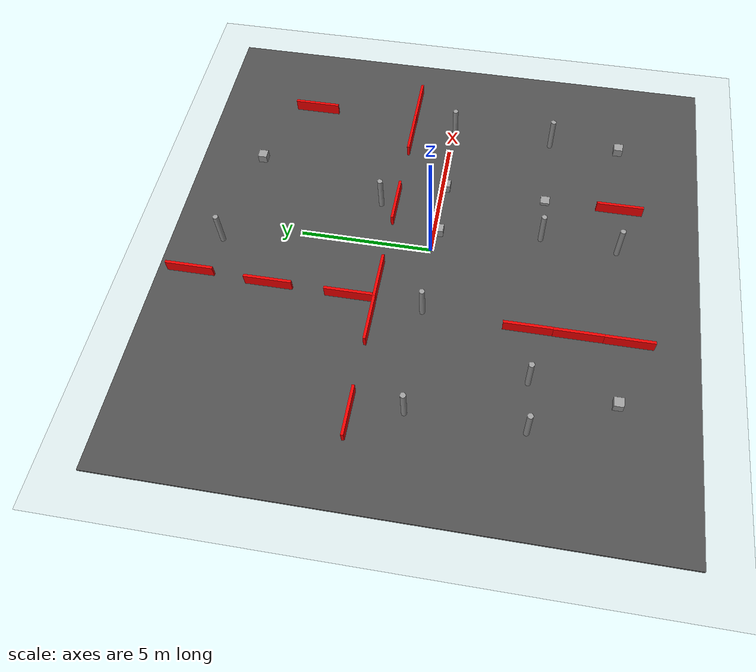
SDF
<sdf version="1.7">
 <world name="default">
  <light name="sun" type="directional">
   <pose>0 0 10 0 -0 0</pose>
   <diffuse>0.8 0.8 0.8 1</diffuse>
   <specular>0.2 0.2 0.2 1</specular>
   <attenuation>
    <range>1000</range>
    <constant>0.9</constant>
    <linear>0.01</linear>
    <quadratic>0.001</quadratic>
   </attenuation>
   <direction>-0.5 0.1 -0.9</direction>
   <spot><inner_angle>0</inner_angle><outer_angle>0</outer_angle><falloff>0</falloff></spot>
  </light>
  <model name="ground_plane">
   <static>1</static>
   <link name="link">
    <collision name="collision">
     <geometry><plane><normal>0 0 1</normal><size>100 100</size></plane></geometry>
     <surface><friction><ode><mu>100</mu><mu2>50</mu2></ode></friction></surface>
    </collision>
    <visual name="visual">
     <cast_shadows>0</cast_shadows>
     <geometry><plane><normal>0 0 1</normal><size>100 100</size></plane></geometry>
     <material>
      <script><uri>file://media/materials/scripts/gazebo.material</uri><name>Gazebo/Grey</name></script>
     </material>
    </visual>
   </link>
  </model>
  <gravity>0 0 -9.8</gravity>
  <magnetic_field>6e-06 2.3e-05 -4.2e-05</magnetic_field>
  <atmosphere type="adiabatic"/>
  <physics name="default_physics" default="0" type="ode">
   <max_step_size>0.001</max_step_size>
   <real_time_factor>1</real_time_factor>
   <real_time_update_rate>1000</real_time_update_rate>
  </physics>
  <scene><ambient>0.4 0.4 0.4 1</ambient><background>0.7 0.7 0.7 1</background><shadows>1</shadows></scene>
  <audio><device>default</device></audio>
  <spherical_coordinates>
   <surface_model>EARTH_WGS84</surface_model>
   <latitude_deg>0</latitude_deg>
   <longitude_deg>0</longitude_deg>
   <elevation>0</elevation>
   <heading_deg>0</heading_deg>
  </spherical_coordinates>
  <model name="asphalt_plane">
   <static>1</static>
   <link name="link">
    <collision name="collision"><geometry><box><size>20 20 0.1</size></box></geometry></collision>
    <visual name="visual">
     <cast_shadows>0</cast_shadows>
     <geometry><box><size>20 20 0.1</size></box></geometry>
     <material>
      <script>
       <uri>model://asphalt_plane/materials/scripts</uri>
       <uri>model://asphalt_plane/materials/textures</uri>
       <name>vrc/asphalt</name>
      </script>
     </material>
    </visual>
    <velocity_decay><linear>0</linear><angular>0</angular></velocity_decay>
   </link>
   <pose>-0.297765 -0.057544 0 0 -0 0</pose>
  </model>
  <gravity>0 0 -9.8</gravity>
  <magnetic_field>6e-06 2.3e-05 -4.2e-05</magnetic_field>
  <atmosphere type="adiabatic"/>
  <audio><device>default</device></audio>
  <spherical_coordinates>
   <surface_model>EARTH_WGS84</surface_model>
   <latitude_deg>0</latitude_deg>
   <longitude_deg>0</longitude_deg>
   <elevation>0</elevation>
   <heading_deg>0</heading_deg>
  </spherical_coordinates>
  <model name="circular_reflector">
   <static>1</static>
   <pose>5.90778 -4.03761 0 0 -0 0</pose>
   <link name="link">
    <inertial>
     <mass>1</mass>
     <inertia><ixx>0</ixx><ixy>0</ixy><ixz>0</ixz><iyy>0</iyy><iyz>0</iyz><izz>0</izz></inertia>
    </inertial>
    <collision name="collision">
     <laser_retro>1000</laser_retro>
     <geometry><cylinder><radius>0.05</radius><length>1</length></cylinder></geometry>
    </collision>
    <visual name="visual">
     <geometry><cylinder><radius>0.1</radius><length>3</length></cylinder></geometry>
     <material>
      <script><name>Gazebo/Grey</name><uri>file://media/materials/scripts/gazebo.material</uri></script>
      <ambient>1 1 1 1</ambient>
      <diffuse>1 1 1 1</diffuse>
      <specular>1 1 1 1</specular>
      <emissive>1 1 1 1</emissive>
     </material>
     <laser_retro>1000</laser_retro>
    </visual>
   </link>
  </model>
  <model name="circular_reflector_0">
   <static>1</static>
   <pose>5.87326 -0.076984 0 0 -0 0</pose>
   <link name="link">
    <inertial>
     <mass>1</mass>
     <inertia><ixx>0</ixx><ixy>0</ixy><ixz>0</ixz><iyy>0</iyy><iyz>0</iyz><izz>0</izz></inertia>
    </inertial>
    <collision name="collision">
     <laser_retro>1000</laser_retro>
     <geometry><cylinder><radius>0.05</radius><length>1</length></cylinder></geometry>
    </collision>
    <visual name="visual">
     <geometry><cylinder><radius>0.1</radius><length>3</length></cylinder></geometry>
     <material>
      <script><name>Gazebo/Grey</name><uri>file://media/materials/scripts/gazebo.material</uri></script>
      <ambient>1 1 1 1</ambient>
      <diffuse>1 1 1 1</diffuse>
      <specular>1 1 1 1</specular>
      <emissive>1 1 1 1</emissive>
     </material>
     <laser_retro>1000</laser_retro>
    </visual>
   </link>
  </model>
  <model name="circular_reflector_0_clone_clone">
   <static>1</static>
   <pose>1.12879 -4.06871 0 0 -0 0</pose>
   <link name="link">
    <inertial>
     <mass>1</mass>
     <inertia><ixx>0</ixx><ixy>0</ixy><ixz>0</ixz><iyy>0</iyy><iyz>0</iyz><izz>0</izz></inertia>
    </inertial>
    <collision name="collision">
     <laser_retro>1000</laser_retro>
     <geometry><cylinder><radius>0.05</radius><length>1</length></cylinder></geometry>
    </collision>
    <visual name="visual">
     <geometry><cylinder><radius>0.1</radius><length>3</length></cylinder></geometry>
     <material>
      <script><name>Gazebo/Grey</name><uri>file://media/materials/scripts/gazebo.material</uri></script>
      <ambient>1 1 1 1</ambient>
      <diffuse>1 1 1 1</diffuse>
      <specular>1 1 1 1</specular>
      <emissive>1 1 1 1</emissive>
     </material>
     <laser_retro>1000</laser_retro>
    </visual>
   </link>
  </model>
  <model name="circular_reflector_0_clone_clone_0">
   <static>1</static>
   <pose>-2.75059 -0.124986 0 0 -0 0</pose>
   <link name="link">
    <inertial>
     <mass>1</mass>
     <inertia><ixx>0</ixx><ixy>0</ixy><ixz>0</ixz><iyy>0</iyy><iyz>0</iyz><izz>0</izz></inertia>
    </inertial>
    <collision name="collision">
     <laser_retro>1000</laser_retro>
     <geometry><cylinder><radius>0.05</radius><length>1</length></cylinder></geometry>
    </collision>
    <visual name="visual">
     <geometry><cylinder><radius>0.1</radius><length>3</length></cylinder></geometry>
     <material>
      <script><name>Gazebo/Grey</name><uri>file://media/materials/scripts/gazebo.material</uri></script>
      <ambient>1 1 1 1</ambient>
      <diffuse>1 1 1 1</diffuse>
      <specular>1 1 1 1</specular>
      <emissive>1 1 1 1</emissive>
     </material>
     <laser_retro>1000</laser_retro>
    </visual>
   </link>
  </model>
  <model name="circular_reflector_0_clone_clone_2">
   <static>1</static>
   <pose>-6.70087 -0.164899 0 0 -0 0</pose>
   <link name="link">
    <inertial>
     <mass>1</mass>
     <inertia><ixx>0</ixx><ixy>0</ixy><ixz>0</ixz><iyy>0</iyy><iyz>0</iyz><izz>0</izz></inertia>
    </inertial>
    <collision name="collision">
     <laser_retro>1000</laser_retro>
     <geometry><cylinder><radius>0.05</radius><length>1</length></cylinder></geometry>
    </collision>
    <visual name="visual">
     <geometry><cylinder><radius>0.1</radius><length>3</length></cylinder></geometry>
     <material>
      <script><name>Gazebo/Grey</name><uri>file://media/materials/scripts/gazebo.material</uri></script>
      <ambient>1 1 1 1</ambient>
      <diffuse>1 1 1 1</diffuse>
      <specular>1 1 1 1</specular>
      <emissive>1 1 1 1</emissive>
     </material>
     <laser_retro>1000</laser_retro>
    </visual>
   </link>
  </model>
  <model name="circular_reflector_0_clone_clone_3">
   <static>1</static>
   <pose>-6.75978 -4.28292 0 0 -0 0</pose>
   <link name="link">
    <inertial>
     <mass>1</mass>
     <inertia><ixx>0</ixx><ixy>0</ixy><ixz>0</ixz><iyy>0</iyy><iyz>0</iyz><izz>0</izz></inertia>
    </inertial>
    <collision name="collision">
     <laser_retro>1000</laser_retro>
     <geometry><cylinder><radius>0.05</radius><length>1</length></cylinder></geometry>
    </collision>
    <visual name="visual">
     <geometry><cylinder><radius>0.1</radius><length>3</length></cylinder></geometry>
     <material>
      <script><name>Gazebo/Grey</name><uri>file://media/materials/scripts/gazebo.material</uri></script>
      <ambient>1 1 1 1</ambient>
      <diffuse>1 1 1 1</diffuse>
      <specular>1 1 1 1</specular>
      <emissive>1 1 1 1</emissive>
     </material>
     <laser_retro>1000</laser_retro>
    </visual>
   </link>
  </model>
  <model name="barrier_w_reflector">
   <static>1</static>
   <pose>-3.49412 1.65825 0.292208 0 -0 0</pose>
   <link name="link">
    <inertial>
     <mass>1</mass>
     <inertia><ixx>0</ixx><ixy>0</ixy><ixz>0</ixz><iyy>0</iyy><iyz>0</iyz><izz>0</izz></inertia>
    </inertial>
    <collision name="collision">
     <laser_retro>1000</laser_retro>
     <geometry><box><size>1.8 0.1 0.5</size></box></geometry>
    </collision>
    <visual name="visual">
     <geometry><box><size>1.8 0.1 0.5</size></box></geometry>
     <material>
      <ambient>1 0 0 1</ambient>
      <diffuse>1 0 0 1</diffuse>
      <specular>1 0 0 1</specular>
      <emissive>1 0 0 1</emissive>
     </material>
     <laser_retro>1000</laser_retro>
    </visual>
   </link>
  </model>
  <model name="barrier_w_reflector_clone">
   <static>1</static>
   <pose>-1.72087 1.66831 0.292208 0 -0 0</pose>
   <link name="link">
    <inertial>
     <mass>1</mass>
     <inertia><ixx>0</ixx><ixy>0</ixy><ixz>0</ixz><iyy>0</iyy><iyz>0</iyz><izz>0</izz></inertia>
    </inertial>
    <collision name="collision">
     <laser_retro>1000</laser_retro>
     <geometry><box><size>1.8 0.1 0.5</size></box></geometry>
    </collision>
    <visual name="visual">
     <geometry><box><size>1.8 0.1 0.5</size></box></geometry>
     <material>
      <ambient>1 0 0 1</ambient>
      <diffuse>1 0 0 1</diffuse>
      <specular>1 0 0 1</specular>
      <emissive>1 0 0 1</emissive>
     </material>
     <laser_retro>1000</laser_retro>
    </visual>
   </link>
  </model>
  <model name="barrier_w_reflector_clone_1">
   <static>1</static>
   <pose>-7.0687 1.65153 0.292208 0 -0 0</pose>
   <link name="link">
    <inertial>
     <mass>1</mass>
     <inertia><ixx>0</ixx><ixy>0</ixy><ixz>0</ixz><iyy>0</iyy><iyz>0</iyz><izz>0</izz></inertia>
    </inertial>
    <collision name="collision">
     <laser_retro>1000</laser_retro>
     <geometry><box><size>1.8 0.1 0.5</size></box></geometry>
    </collision>
    <visual name="visual">
     <geometry><box><size>1.8 0.1 0.5</size></box></geometry>
     <material>
      <ambient>1 0 0 1</ambient>
      <diffuse>1 0 0 1</diffuse>
      <specular>1 0 0 1</specular>
      <emissive>1 0 0 1</emissive>
     </material>
     <laser_retro>1000</laser_retro>
    </visual>
   </link>
  </model>
  <model name="barrier_w_reflector_clone_3">
   <static>1</static>
   <pose>1.83013 1.6659 0.292208 0 -0 0</pose>
   <link name="link">
    <inertial>
     <mass>1</mass>
     <inertia><ixx>0</ixx><ixy>0</ixy><ixz>0</ixz><iyy>0</iyy><iyz>0</iyz><izz>0</izz></inertia>
    </inertial>
    <collision name="collision">
     <laser_retro>1000</laser_retro>
     <geometry><box><size>1.8 0.1 0.5</size></box></geometry>
    </collision>
    <visual name="visual">
     <geometry><box><size>1.8 0.1 0.5</size></box></geometry>
     <material>
      <ambient>1 0 0 1</ambient>
      <diffuse>1 0 0 1</diffuse>
      <specular>1 0 0 1</specular>
      <emissive>1 0 0 1</emissive>
     </material>
     <laser_retro>1000</laser_retro>
    </visual>
   </link>
  </model>
  <model name="barrier_w_reflector_clone_5">
   <static>1</static>
   <pose>5.41384 1.66375 0.292208 0 -0 0</pose>
   <link name="link">
    <inertial>
     <mass>1</mass>
     <inertia><ixx>0</ixx><ixy>0</ixy><ixz>0</ixz><iyy>0</iyy><iyz>0</iyz><izz>0</izz></inertia>
    </inertial>
    <collision name="collision">
     <laser_retro>1000</laser_retro>
     <geometry><box><size>1.8 0.1 0.5</size></box></geometry>
    </collision>
    <visual name="visual">
     <geometry><box><size>1.8 0.1 0.5</size></box></geometry>
     <material>
      <ambient>1 0 0 1</ambient>
      <diffuse>1 0 0 1</diffuse>
      <specular>1 0 0 1</specular>
      <emissive>1 0 0 1</emissive>
     </material>
     <laser_retro>1000</laser_retro>
    </visual>
   </link>
  </model>
  <model name="barrier_w_reflector_clone_6">
   <static>1</static>
   <pose>7.19583 1.66054 0.292208 0 -0 0</pose>
   <link name="link">
    <inertial>
     <mass>1</mass>
     <inertia><ixx>0</ixx><ixy>0</ixy><ixz>0</ixz><iyy>0</iyy><iyz>0</iyz><izz>0</izz></inertia>
    </inertial>
    <collision name="collision">
     <laser_retro>1000</laser_retro>
     <geometry><box><size>1.8 0.1 0.5</size></box></geometry>
    </collision>
    <visual name="visual">
     <geometry><box><size>1.8 0.1 0.5</size></box></geometry>
     <material>
      <ambient>1 0 0 1</ambient>
      <diffuse>1 0 0 1</diffuse>
      <specular>1 0 0 1</specular>
      <emissive>1 0 0 1</emissive>
     </material>
     <laser_retro>1000</laser_retro>
    </visual>
   </link>
  </model>
  <model name="barrier_w_reflector_clone_1_clone">
   <static>1</static>
   <pose>-2.56199 2.62958 0.292208 0 0 -1.56997</pose>
   <link name="link">
    <inertial>
     <mass>1</mass>
     <inertia><ixx>0</ixx><ixy>0</ixy><ixz>0</ixz><iyy>0</iyy><iyz>0</iyz><izz>0</izz></inertia>
    </inertial>
    <collision name="collision">
     <laser_retro>1000</laser_retro>
     <geometry><box><size>1.8 0.1 0.5</size></box></geometry>
    </collision>
    <visual name="visual">
     <geometry><box><size>1.8 0.1 0.5</size></box></geometry>
     <material>
      <ambient>1 0 0 1</ambient>
      <diffuse>1 0 0 1</diffuse>
      <specular>1 0 0 1</specular>
      <emissive>1 0 0 1</emissive>
     </material>
     <laser_retro>1000</laser_retro>
    </visual>
   </link>
  </model>
  <model name="barrier_w_reflector_clone_1_clone_clone">
   <static>1</static>
   <pose>-2.39384 8.67038 0.292208 0 0 -1.56997</pose>
   <link name="link">
    <inertial>
     <mass>1</mass>
     <inertia><ixx>0</ixx><ixy>0</ixy><ixz>0</ixz><iyy>0</iyy><iyz>0</iyz><izz>0</izz></inertia>
    </inertial>
    <collision name="collision">
     <laser_retro>1000</laser_retro>
     <geometry><box><size>1.8 0.1 0.5</size></box></geometry>
    </collision>
    <visual name="visual">
     <geometry><box><size>1.8 0.1 0.5</size></box></geometry>
     <material>
      <ambient>1 0 0 1</ambient>
      <diffuse>1 0 0 1</diffuse>
      <specular>1 0 0 1</specular>
      <emissive>1 0 0 1</emissive>
     </material>
     <laser_retro>1000</laser_retro>
    </visual>
   </link>
  </model>
  <model name="barrier_w_reflector_clone_1_clone_clone_0">
   <static>1</static>
   <pose>-2.52402 5.65206 0.292208 0 0 -1.56997</pose>
   <link name="link">
    <inertial>
     <mass>1</mass>
     <inertia><ixx>0</ixx><ixy>0</ixy><ixz>0</ixz><iyy>0</iyy><iyz>0</iyz><izz>0</izz></inertia>
    </inertial>
    <collision name="collision">
     <laser_retro>1000</laser_retro>
     <geometry><box><size>1.8 0.1 0.5</size></box></geometry>
    </collision>
    <visual name="visual">
     <geometry><box><size>1.8 0.1 0.5</size></box></geometry>
     <material>
      <ambient>1 0 0 1</ambient>
      <diffuse>1 0 0 1</diffuse>
      <specular>1 0 0 1</specular>
      <emissive>1 0 0 1</emissive>
     </material>
     <laser_retro>1000</laser_retro>
    </visual>
   </link>
  </model>
  <model name="barrier_w_reflector_clone_1_clone_clone_0_clone">
   <static>1</static>
   <pose>6.35528 5.87996 0.292208 0 0 -1.56997</pose>
   <link name="link">
    <inertial>
     <mass>1</mass>
     <inertia><ixx>0</ixx><ixy>0</ixy><ixz>0</ixz><iyy>0</iyy><iyz>0</iyz><izz>0</izz></inertia>
    </inertial>
    <collision name="collision">
     <laser_retro>1000</laser_retro>
     <geometry><box><size>1.8 0.1 0.5</size></box></geometry>
    </collision>
    <visual name="visual">
     <geometry><box><size>1.8 0.1 0.5</size></box></geometry>
     <material>
      <ambient>1 0 0 1</ambient>
      <diffuse>1 0 0 1</diffuse>
      <specular>1 0 0 1</specular>
      <emissive>1 0 0 1</emissive>
     </material>
     <laser_retro>1000</laser_retro>
    </visual>
   </link>
  </model>
  <model name="circular_reflector_0_clone">
   <static>1</static>
   <pose>1.828 2.26091 0 0 -0 0</pose>
   <link name="link">
    <inertial>
     <mass>1</mass>
     <inertia><ixx>0</ixx><ixy>0</ixy><ixz>0</ixz><iyy>0</iyy><iyz>0</iyz><izz>0</izz></inertia>
    </inertial>
    <collision name="collision">
     <laser_retro>1000</laser_retro>
     <geometry><cylinder><radius>0.05</radius><length>1</length></cylinder></geometry>
    </collision>
    <visual name="visual">
     <geometry><cylinder><radius>0.1</radius><length>3</length></cylinder></geometry>
     <material>
      <script><name>Gazebo/Grey</name><uri>file://media/materials/scripts/gazebo.material</uri></script>
      <ambient>1 1 1 1</ambient>
      <diffuse>1 1 1 1</diffuse>
      <specular>1 1 1 1</specular>
      <emissive>1 1 1 1</emissive>
     </material>
     <laser_retro>1000</laser_retro>
    </visual>
   </link>
  </model>
  <model name="square_reflector">
   <static>1</static>
   <pose>2.98014 -4.08403 0 0 -0 0</pose>
   <link name="link">
    <inertial>
     <mass>1</mass>
     <inertia><ixx>0</ixx><ixy>0</ixy><ixz>0</ixz><iyy>0</iyy><iyz>0</iyz><izz>0</izz></inertia>
    </inertial>
    <collision name="collision">
     <laser_retro>1000</laser_retro>
     <geometry><box><size>0.35 0.35 0.35</size></box></geometry>
    </collision>
    <visual name="visual">
     <geometry><box><size>0.35 0.35 0.35</size></box></geometry>
     <material>
      <script><name>Gazebo/Grey</name><uri>file://media/materials/scripts/gazebo.material</uri></script>
      <ambient>1 1 1 1</ambient>
      <diffuse>1 1 1 1</diffuse>
      <specular>1 1 1 1</specular>
      <emissive>1 1 1 1</emissive>
     </material>
     <laser_retro>1000</laser_retro>
    </visual>
   </link>
  </model>
  <model name="square_reflector_clone">
   <static>1</static>
   <pose>3.02167 -0.127452 0.221803 0 -0 0</pose>
   <link name="link">
    <inertial>
     <mass>1</mass>
     <inertia><ixx>0</ixx><ixy>0</ixy><ixz>0</ixz><iyy>0</iyy><iyz>0</iyz><izz>0</izz></inertia>
    </inertial>
    <collision name="collision">
     <laser_retro>1000</laser_retro>
     <geometry><box><size>0.35 0.35 0.35</size></box></geometry>
    </collision>
    <visual name="visual">
     <geometry><box><size>0.35 0.35 0.35</size></box></geometry>
     <material>
      <script><name>Gazebo/Grey</name><uri>file://media/materials/scripts/gazebo.material</uri></script>
      <ambient>1 1 1 1</ambient>
      <diffuse>1 1 1 1</diffuse>
      <specular>1 1 1 1</specular>
      <emissive>1 1 1 1</emissive>
     </material>
     <laser_retro>1000</laser_retro>
    </visual>
   </link>
  </model>
  <model name="square_reflector_clone_clone">
   <static>1</static>
   <pose>3.37621 7.46244 0.221803 0 -0 0</pose>
   <link name="link">
    <inertial>
     <mass>1</mass>
     <inertia><ixx>0</ixx><ixy>0</ixy><ixz>0</ixz><iyy>0</iyy><iyz>0</iyz><izz>0</izz></inertia>
    </inertial>
    <collision name="collision">
     <laser_retro>1000</laser_retro>
     <geometry><box><size>0.35 0.35 0.35</size></box></geometry>
    </collision>
    <visual name="visual">
     <geometry><box><size>0.35 0.35 0.35</size></box></geometry>
     <material>
      <script><name>Gazebo/Grey</name><uri>file://media/materials/scripts/gazebo.material</uri></script>
      <ambient>1 1 1 1</ambient>
      <diffuse>1 1 1 1</diffuse>
      <specular>1 1 1 1</specular>
      <emissive>1 1 1 1</emissive>
     </material>
     <laser_retro>1000</laser_retro>
    </visual>
   </link>
  </model>
  <model name="square_reflector_clone_clone_0">
   <static>1</static>
   <pose>5.99508 -6.81528 0.221803 0 -0 0</pose>
   <link name="link">
    <inertial>
     <mass>1</mass>
     <inertia><ixx>0</ixx><ixy>0</ixy><ixz>0</ixz><iyy>0</iyy><iyz>0</iyz><izz>0</izz></inertia>
    </inertial>
    <collision name="collision">
     <laser_retro>1000</laser_retro>
     <geometry><box><size>0.35 0.35 0.35</size></box></geometry>
    </collision>
    <visual name="visual">
     <geometry><box><size>0.35 0.35 0.35</size></box></geometry>
     <material>
      <script><name>Gazebo/Grey</name><uri>file://media/materials/scripts/gazebo.material</uri></script>
      <ambient>1 1 1 1</ambient>
      <diffuse>1 1 1 1</diffuse>
      <specular>1 1 1 1</specular>
      <emissive>1 1 1 1</emissive>
     </material>
     <laser_retro>1000</laser_retro>
    </visual>
   </link>
  </model>
  <model name="barrier_w_reflector_clone_1_clone_clone_0_clone_clone">
   <static>1</static>
   <pose>2.89039 -6.97614 0.292208 0 0 -1.56997</pose>
   <link name="link">
    <inertial>
     <mass>1</mass>
     <inertia><ixx>0</ixx><ixy>0</ixy><ixz>0</ixz><iyy>0</iyy><iyz>0</iyz><izz>0</izz></inertia>
    </inertial>
    <collision name="collision">
     <laser_retro>1000</laser_retro>
     <geometry><box><size>1.8 0.1 0.5</size></box></geometry>
    </collision>
    <visual name="visual">
     <geometry><box><size>1.8 0.1 0.5</size></box></geometry>
     <material>
      <ambient>1 0 0 1</ambient>
      <diffuse>1 0 0 1</diffuse>
      <specular>1 0 0 1</specular>
      <emissive>1 0 0 1</emissive>
     </material>
     <laser_retro>1000</laser_retro>
    </visual>
   </link>
  </model>
  <model name="square_reflector_clone_0">
   <static>1</static>
   <pose>-5.30659 -7.22872 0.221803 0 -0 0</pose>
   <link name="link">
    <inertial>
     <mass>1</mass>
     <inertia><ixx>0</ixx><ixy>0</ixy><ixz>0</ixz><iyy>0</iyy><iyz>0</iyz><izz>0</izz></inertia>
    </inertial>
    <collision name="collision">
     <laser_retro>1000</laser_retro>
     <geometry><box><size>0.35 0.35 0.35</size></box></geometry>
    </collision>
    <visual name="visual">
     <geometry><box><size>0.35 0.35 0.35</size></box></geometry>
     <material>
      <script><name>Gazebo/Grey</name><uri>file://media/materials/scripts/gazebo.material</uri></script>
      <ambient>1 1 1 1</ambient>
      <diffuse>1 1 1 1</diffuse>
      <specular>1 1 1 1</specular>
      <emissive>1 1 1 1</emissive>
     </material>
     <laser_retro>1000</laser_retro>
    </visual>
   </link>
  </model>
  <model name="square_reflector_clone_clone_1">
   <static>1</static>
   <pose>0.833087 -0.175897 0.221803 0 -0 0</pose>
   <link name="link">
    <inertial>
     <mass>1</mass>
     <inertia><ixx>0</ixx><ixy>0</ixy><ixz>0</ixz><iyy>0</iyy><iyz>0</iyz><izz>0</izz></inertia>
    </inertial>
    <collision name="collision">
     <laser_retro>1000</laser_retro>
     <geometry><box><size>0.35 0.35 0.35</size></box></geometry>
    </collision>
    <visual name="visual">
     <geometry><box><size>0.35 0.35 0.35</size></box></geometry>
     <material>
      <script><name>Gazebo/Grey</name><uri>file://media/materials/scripts/gazebo.material</uri></script>
      <ambient>1 1 1 1</ambient>
      <diffuse>1 1 1 1</diffuse>
      <specular>1 1 1 1</specular>
      <emissive>1 1 1 1</emissive>
     </material>
     <laser_retro>1000</laser_retro>
    </visual>
   </link>
  </model>
  <model name="circular_reflector_clone">
   <static>1</static>
   <pose>0.930455 -6.96656 0 0 -0 0</pose>
   <link name="link">
    <inertial>
     <mass>1</mass>
     <inertia><ixx>0</ixx><ixy>0</ixy><ixz>0</ixz><iyy>0</iyy><iyz>0</iyz><izz>0</izz></inertia>
    </inertial>
    <collision name="collision">
     <laser_retro>1000</laser_retro>
     <geometry><cylinder><radius>0.05</radius><length>1</length></cylinder></geometry>
    </collision>
    <visual name="visual">
     <geometry><cylinder><radius>0.1</radius><length>3</length></cylinder></geometry>
     <material>
      <script><name>Gazebo/Grey</name><uri>file://media/materials/scripts/gazebo.material</uri></script>
      <ambient>1 1 1 1</ambient>
      <diffuse>1 1 1 1</diffuse>
      <specular>1 1 1 1</specular>
      <emissive>1 1 1 1</emissive>
     </material>
     <laser_retro>1000</laser_retro>
    </visual>
   </link>
  </model>
  <model name="barrier_w_reflector_clone_1_clone_clone_0_clone_clone_clone">
   <static>1</static>
   <pose>-2.93957 -3.95404 0.292208 0 0 -1.56997</pose>
   <link name="link">
    <inertial>
     <mass>1</mass>
     <inertia><ixx>0</ixx><ixy>0</ixy><ixz>0</ixz><iyy>0</iyy><iyz>0</iyz><izz>0</izz></inertia>
    </inertial>
    <collision name="collision">
     <laser_retro>1000</laser_retro>
     <geometry><box><size>1.8 0.1 0.5</size></box></geometry>
    </collision>
    <visual name="visual">
     <geometry><box><size>1.8 0.1 0.5</size></box></geometry>
     <material>
      <ambient>1 0 0 1</ambient>
      <diffuse>1 0 0 1</diffuse>
      <specular>1 0 0 1</specular>
      <emissive>1 0 0 1</emissive>
     </material>
     <laser_retro>1000</laser_retro>
    </visual>
   </link>
  </model>
  <model name="barrier_w_reflector_clone_1_clone_clone_0_clone_clone_clone_0">
   <static>1</static>
   <pose>-2.94913 -7.52431 0.292208 0 0 -1.56997</pose>
   <link name="link">
    <inertial>
     <mass>1</mass>
     <inertia><ixx>0</ixx><ixy>0</ixy><ixz>0</ixz><iyy>0</iyy><iyz>0</iyz><izz>0</izz></inertia>
    </inertial>
    <collision name="collision">
     <laser_retro>1000</laser_retro>
     <geometry><box><size>1.8 0.1 0.5</size></box></geometry>
    </collision>
    <visual name="visual">
     <geometry><box><size>1.8 0.1 0.5</size></box></geometry>
     <material>
      <ambient>1 0 0 1</ambient>
      <diffuse>1 0 0 1</diffuse>
      <specular>1 0 0 1</specular>
      <emissive>1 0 0 1</emissive>
     </material>
     <laser_retro>1000</laser_retro>
    </visual>
   </link>
  </model>
  <model name="barrier_w_reflector_clone_1_clone_clone_0_clone_clone_clone_1">
   <static>1</static>
   <pose>-2.94423 -5.73045 0.292208 0 0 -1.56997</pose>
   <link name="link">
    <inertial>
     <mass>1</mass>
     <inertia><ixx>0</ixx><ixy>0</ixy><ixz>0</ixz><iyy>0</iyy><iyz>0</iyz><izz>0</izz></inertia>
    </inertial>
    <collision name="collision">
     <laser_retro>1000</laser_retro>
     <geometry><box><size>1.8 0.1 0.5</size></box></geometry>
    </collision>
    <visual name="visual">
     <geometry><box><size>1.8 0.1 0.5</size></box></geometry>
     <material>
      <ambient>1 0 0 1</ambient>
      <diffuse>1 0 0 1</diffuse>
      <specular>1 0 0 1</specular>
      <emissive>1 0 0 1</emissive>
     </material>
     <laser_retro>1000</laser_retro>
    </visual>
   </link>
  </model>
  <model name="circular_reflector_0_clone_clone_1">
   <static>1</static>
   <pose>-4.95239 -4.15818 0 0 -0 0</pose>
   <link name="link">
    <inertial>
     <mass>1</mass>
     <inertia><ixx>0</ixx><ixy>0</ixy><ixz>0</ixz><iyy>0</iyy><iyz>0</iyz><izz>0</izz></inertia>
    </inertial>
    <collision name="collision">
     <laser_retro>1000</laser_retro>
     <geometry><cylinder><radius>0.05</radius><length>1</length></cylinder></geometry>
    </collision>
    <visual name="visual">
     <geometry><cylinder><radius>0.1</radius><length>3</length></cylinder></geometry>
     <material>
      <script><name>Gazebo/Grey</name><uri>file://media/materials/scripts/gazebo.material</uri></script>
      <ambient>1 1 1 1</ambient>
      <diffuse>1 1 1 1</diffuse>
      <specular>1 1 1 1</specular>
      <emissive>1 1 1 1</emissive>
     </material>
     <laser_retro>1000</laser_retro>
    </visual>
   </link>
  </model>
  <model name="circular_reflector_0_clone_clone_4">
   <static>1</static>
   <pose>-0.783792 7.93727 0 0 -0 0</pose>
   <link name="link">
    <inertial>
     <mass>1</mass>
     <inertia><ixx>0</ixx><ixy>0</ixy><ixz>0</ixz><iyy>0</iyy><iyz>0</iyz><izz>0</izz></inertia>
    </inertial>
    <collision name="collision">
     <laser_retro>1000</laser_retro>
     <geometry><cylinder><radius>0.05</radius><length>1</length></cylinder></geometry>
    </collision>
    <visual name="visual">
     <geometry><cylinder><radius>0.1</radius><length>3</length></cylinder></geometry>
     <material>
      <script><name>Gazebo/Grey</name><uri>file://media/materials/scripts/gazebo.material</uri></script>
      <ambient>1 1 1 1</ambient>
      <diffuse>1 1 1 1</diffuse>
      <specular>1 1 1 1</specular>
      <emissive>1 1 1 1</emissive>
     </material>
     <laser_retro>1000</laser_retro>
    </visual>
   </link>
  </model>
 </world>
</sdf>
